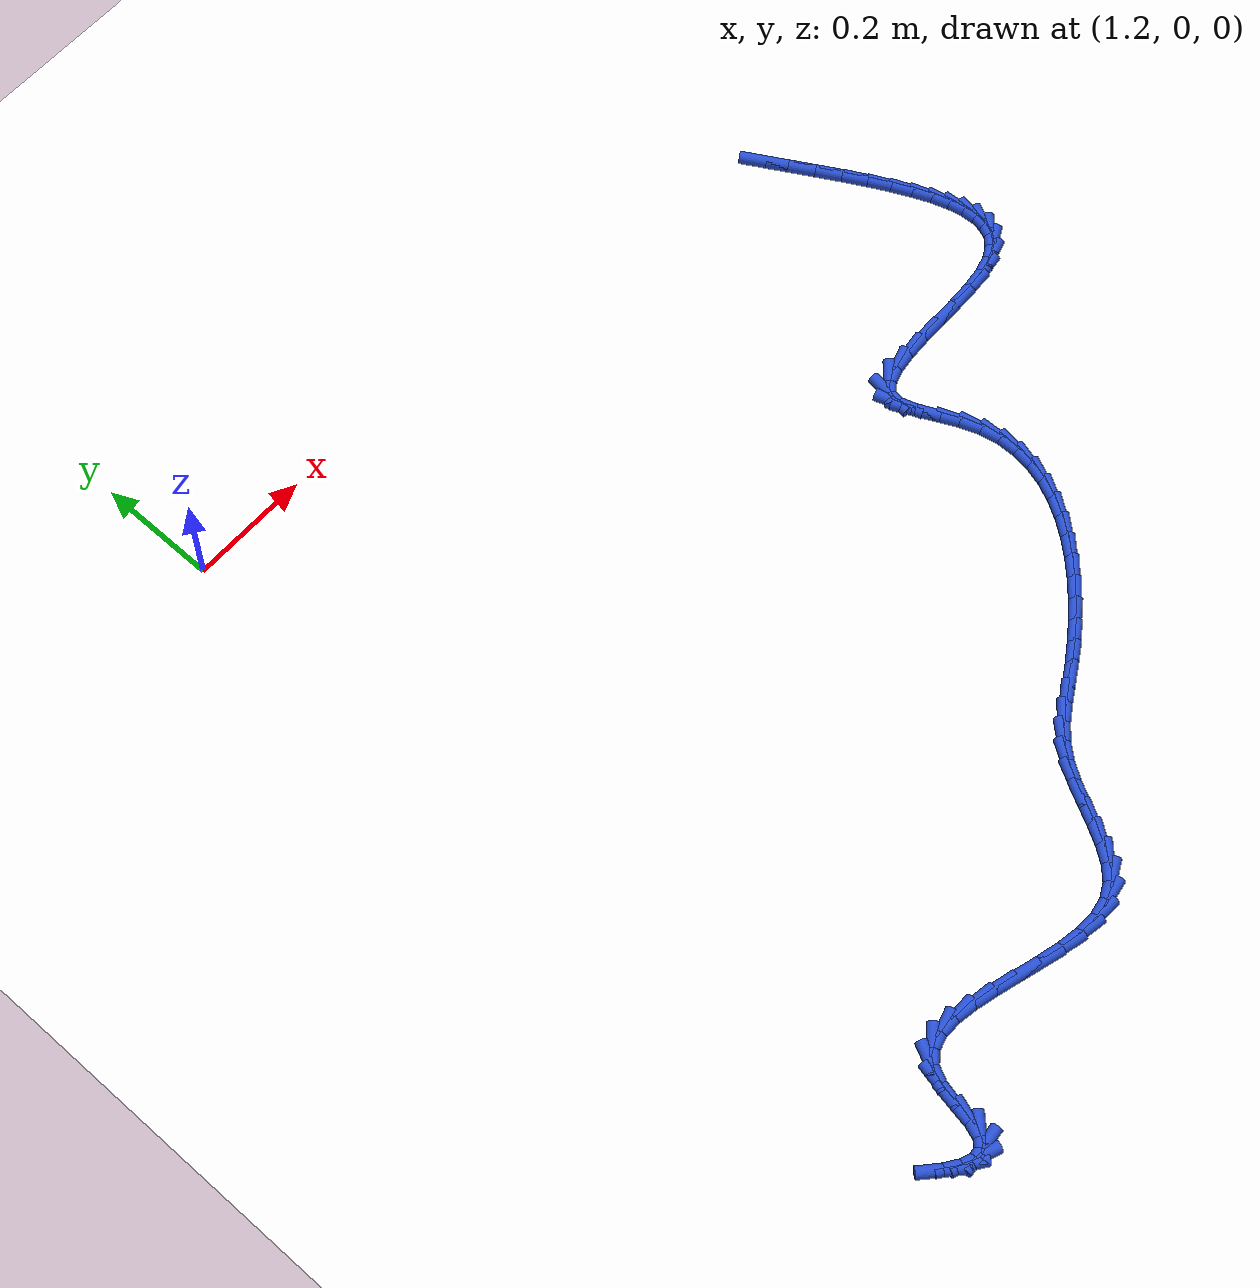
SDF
<sdf version="1.6">
 <world name="default">
  <model name="ground_plane">
   <static>1</static>
   <link name="link">
    <collision name="collision">
     <geometry><plane><normal>0 0 1</normal><size>100 100</size></plane></geometry>
     <surface><friction><ode><mu>100</mu><mu2>50</mu2></ode></friction></surface>
    </collision>
    <visual name="visual">
     <cast_shadows>0</cast_shadows>
     <geometry><plane><normal>0 0 1</normal><size>100 100</size></plane></geometry>
     <material>
      <script><uri>file://media/materials/scripts/gazebo.material</uri><name>Gazebo/WhiteGlow</name></script>
     </material>
    </visual>
   </link>
  </model>
  <model name="line">
   <link name="link_140">
    <pose>2.3233410467871987 -0.14578209558160848 0.01 0 1.57 -1.0468032617446763</pose>
    <collision name="collision">
     <geometry><cylinder><radius>0.01</radius><length>0.08</length></cylinder></geometry>
    </collision>
    <visual name="visual">
     <material>
      <script><name>Gazebo/Blue</name><uri>file://media/materials/scripts/gazebo.material</uri></script>
     </material>
     <geometry><cylinder><radius>0.01</radius><length>0.08</length></cylinder></geometry>
    </visual>
   </link>
   <link name="link_141">
    <pose>2.345565595922371 -0.18424111615747807 0.01 0 1.57 -1.0452987437808245</pose>
    <collision name="collision">
     <geometry><cylinder><radius>0.01</radius><length>0.08</length></cylinder></geometry>
    </collision>
    <visual name="visual">
     <material>
      <script><name>Gazebo/Blue</name><uri>file://media/materials/scripts/gazebo.material</uri></script>
     </material>
     <geometry><cylinder><radius>0.01</radius><length>0.08</length></cylinder></geometry>
    </visual>
   </link>
   <link name="link_142">
    <pose>2.3673808028524976 -0.221861014378513 0.01 0 1.57 -1.0511559035060623</pose>
    <collision name="collision">
     <geometry><cylinder><radius>0.01</radius><length>0.08</length></cylinder></geometry>
    </collision>
    <visual name="visual">
     <material>
      <script><name>Gazebo/Blue</name><uri>file://media/materials/scripts/gazebo.material</uri></script>
     </material>
     <geometry><cylinder><radius>0.01</radius><length>0.08</length></cylinder></geometry>
    </visual>
   </link>
   <link name="link_143">
    <pose>2.388302366026942 -0.2584317730133299 0.01 0 1.57 -1.0652992945127893</pose>
    <collision name="collision">
     <geometry><cylinder><radius>0.01</radius><length>0.08</length></cylinder></geometry>
    </collision>
    <visual name="visual">
     <material>
      <script><name>Gazebo/Blue</name><uri>file://media/materials/scripts/gazebo.material</uri></script>
     </material>
     <geometry><cylinder><radius>0.01</radius><length>0.08</length></cylinder></geometry>
    </visual>
   </link>
   <link name="link_144">
    <pose>2.407845983895069 -0.29374337483054624 0.01 0 1.57 -1.089341282552159</pose>
    <collision name="collision">
     <geometry><cylinder><radius>0.01</radius><length>0.08</length></cylinder></geometry>
    </collision>
    <visual name="visual">
     <material>
      <script><name>Gazebo/Blue</name><uri>file://media/materials/scripts/gazebo.material</uri></script>
     </material>
     <geometry><cylinder><radius>0.01</radius><length>0.08</length></cylinder></geometry>
    </visual>
   </link>
   <link name="link_145">
    <pose>2.4255273549062433 -0.32758580259877856 0.01 0 1.57 -1.1258957930219091</pose>
    <collision name="collision">
     <geometry><cylinder><radius>0.01</radius><length>0.08</length></cylinder></geometry>
    </collision>
    <visual name="visual">
     <material>
      <script><name>Gazebo/Blue</name><uri>file://media/materials/scripts/gazebo.material</uri></script>
     </material>
     <geometry><cylinder><radius>0.01</radius><length>0.08</length></cylinder></geometry>
    </visual>
   </link>
   <link name="link_146">
    <pose>2.440862177509827 -0.3597490390866439 0.01 0 1.57 -1.1791109807450115</pose>
    <collision name="collision">
     <geometry><cylinder><radius>0.01</radius><length>0.08</length></cylinder></geometry>
    </collision>
    <visual name="visual">
     <material>
      <script><name>Gazebo/Blue</name><uri>file://media/materials/scripts/gazebo.material</uri></script>
     </material>
     <geometry><cylinder><radius>0.01</radius><length>0.08</length></cylinder></geometry>
    </visual>
   </link>
   <link name="link_147">
    <pose>2.4533661501551856 -0.3900230670627593 0.01 0 1.57 -1.2555371748686328</pose>
    <collision name="collision">
     <geometry><cylinder><radius>0.01</radius><length>0.08</length></cylinder></geometry>
    </collision>
    <visual name="visual">
     <material>
      <script><name>Gazebo/Blue</name><uri>file://media/materials/scripts/gazebo.material</uri></script>
     </material>
     <geometry><cylinder><radius>0.01</radius><length>0.08</length></cylinder></geometry>
    </visual>
   </link>
   <link name="link_148">
    <pose>2.4625549712916825 -0.4181978692957416 0.01 0 1.57 -1.3653746337257533</pose>
    <collision name="collision">
     <geometry><cylinder><radius>0.01</radius><length>0.08</length></cylinder></geometry>
    </collision>
    <visual name="visual">
     <material>
      <script><name>Gazebo/Blue</name><uri>file://media/materials/scripts/gazebo.material</uri></script>
     </material>
     <geometry><cylinder><radius>0.01</radius><length>0.08</length></cylinder></geometry>
    </visual>
   </link>
   <link name="link_149">
    <pose>2.467944339368682 -0.4440634285542078 0.01 0 1.57 -1.5234745625955062</pose>
    <collision name="collision">
     <geometry><cylinder><radius>0.01</radius><length>0.08</length></cylinder></geometry>
    </collision>
    <visual name="visual">
     <material>
      <script><name>Gazebo/Blue</name><uri>file://media/materials/scripts/gazebo.material</uri></script>
     </material>
     <geometry><cylinder><radius>0.01</radius><length>0.08</length></cylinder></geometry>
    </visual>
   </link>
   <link name="link_150">
    <pose>2.4690499528355483 -0.46740972760677485 0.01 0 1.57 1.394988616758866</pose>
    <collision name="collision">
     <geometry><cylinder><radius>0.01</radius><length>0.08</length></cylinder></geometry>
    </collision>
    <visual name="visual">
     <material>
      <script><name>Gazebo/Blue</name><uri>file://media/materials/scripts/gazebo.material</uri></script>
     </material>
     <geometry><cylinder><radius>0.01</radius><length>0.08</length></cylinder></geometry>
    </visual>
   </link>
   <link name="link_151">
    <pose>2.4653875101416456 -0.48802674922205985 0.01 0 1.57 1.103718123807174</pose>
    <collision name="collision">
     <geometry><cylinder><radius>0.01</radius><length>0.08</length></cylinder></geometry>
    </collision>
    <visual name="visual">
     <material>
      <script><name>Gazebo/Blue</name><uri>file://media/materials/scripts/gazebo.material</uri></script>
     </material>
     <geometry><cylinder><radius>0.01</radius><length>0.08</length></cylinder></geometry>
    </visual>
   </link>
   <link name="link_152">
    <pose>2.456472709736338 -0.505704476168679 0.01 0 1.57 0.7811814252276408</pose>
    <collision name="collision">
     <geometry><cylinder><radius>0.01</radius><length>0.08</length></cylinder></geometry>
    </collision>
    <visual name="visual">
     <material>
      <script><name>Gazebo/Blue</name><uri>file://media/materials/scripts/gazebo.material</uri></script>
     </material>
     <geometry><cylinder><radius>0.01</radius><length>0.08</length></cylinder></geometry>
    </visual>
   </link>
   <link name="link_153">
    <pose>2.4418212500689886 -0.5202328912152504 0.01 0 1.57 0.49134119943438126</pose>
    <collision name="collision">
     <geometry><cylinder><radius>0.01</radius><length>0.08</length></cylinder></geometry>
    </collision>
    <visual name="visual">
     <material>
      <script><name>Gazebo/Blue</name><uri>file://media/materials/scripts/gazebo.material</uri></script>
     </material>
     <geometry><cylinder><radius>0.01</radius><length>0.08</length></cylinder></geometry>
    </visual>
   </link>
   <link name="link_154">
    <pose>2.420948829588962 -0.5314019771303906 0.01 0 1.57 0.2689063510715113</pose>
    <collision name="collision">
     <geometry><cylinder><radius>0.01</radius><length>0.08</length></cylinder></geometry>
    </collision>
    <visual name="visual">
     <material>
      <script><name>Gazebo/Blue</name><uri>file://media/materials/scripts/gazebo.material</uri></script>
     </material>
     <geometry><cylinder><radius>0.01</radius><length>0.08</length></cylinder></geometry>
    </visual>
   </link>
   <link name="link_155">
    <pose>2.393371336149462 -0.5390018124081634 0.01 0 1.57 0.1200762438539029</pose>
    <collision name="collision">
     <geometry><cylinder><radius>0.01</radius><length>0.08</length></cylinder></geometry>
    </collision>
    <visual name="visual">
     <material>
      <script><name>Gazebo/Blue</name><uri>file://media/materials/scripts/gazebo.material</uri></script>
     </material>
     <geometry><cylinder><radius>0.01</radius><length>0.08</length></cylinder></geometry>
    </visual>
   </link>
   <link name="link_156">
    <pose>2.359202314145568 -0.54312453351444 0.01 0 1.57 0.0441050024205693</pose>
    <collision name="collision">
     <geometry><cylinder><radius>0.01</radius><length>0.08</length></cylinder></geometry>
    </collision>
    <visual name="visual">
     <material>
      <script><name>Gazebo/Blue</name><uri>file://media/materials/scripts/gazebo.material</uri></script>
     </material>
     <geometry><cylinder><radius>0.01</radius><length>0.08</length></cylinder></geometry>
    </visual>
   </link>
   <link name="link_157">
    <pose>2.3204772079832443 -0.5448336127553774 0.01 0 1.57 0.013552054707591058</pose>
    <collision name="collision">
     <geometry><cylinder><radius>0.01</radius><length>0.08</length></cylinder></geometry>
    </collision>
    <visual name="visual">
     <material>
      <script><name>Gazebo/Blue</name><uri>file://media/materials/scripts/gazebo.material</uri></script>
     </material>
     <geometry><cylinder><radius>0.01</radius><length>0.08</length></cylinder></geometry>
    </visual>
   </link>
   <link name="link_158">
    <pose>2.279617022360586 -0.5453873861283843 0.01 0 1.57 0.016186275126134894</pose>
    <collision name="collision">
     <geometry><cylinder><radius>0.01</radius><length>0.08</length></cylinder></geometry>
    </collision>
    <visual name="visual">
     <material>
      <script><name>Gazebo/Blue</name><uri>file://media/materials/scripts/gazebo.material</uri></script>
     </material>
     <geometry><cylinder><radius>0.01</radius><length>0.08</length></cylinder></geometry>
    </visual>
   </link>
   <link name="link_159">
    <pose>2.2390427619756927 -0.5460441896308701 0.01 0 1.57 0.053245423536676634</pose>
    <collision name="collision">
     <geometry><cylinder><radius>0.01</radius><length>0.08</length></cylinder></geometry>
    </collision>
    <visual name="visual">
     <material>
      <script><name>Gazebo/Blue</name><uri>file://media/materials/scripts/gazebo.material</uri></script>
     </material>
     <geometry><cylinder><radius>0.01</radius><length>0.08</length></cylinder></geometry>
    </visual>
   </link>
   <link name="link_160">
    <pose>2.2011754315266603 -0.5480623592602436 0.01 0 1.57 0.14072392625003285</pose>
    <collision name="collision">
     <geometry><cylinder><radius>0.01</radius><length>0.08</length></cylinder></geometry>
    </collision>
    <visual name="visual">
     <material>
      <script><name>Gazebo/Blue</name><uri>file://media/materials/scripts/gazebo.material</uri></script>
     </material>
     <geometry><cylinder><radius>0.01</radius><length>0.08</length></cylinder></geometry>
    </visual>
   </link>
   <link name="link_161">
    <pose>2.168436035711585 -0.5527002310139141 0.01 0 1.57 0.32599936582326794</pose>
    <collision name="collision">
     <geometry><cylinder><radius>0.01</radius><length>0.08</length></cylinder></geometry>
    </collision>
    <visual name="visual">
     <material>
      <script><name>Gazebo/Blue</name><uri>file://media/materials/scripts/gazebo.material</uri></script>
     </material>
     <geometry><cylinder><radius>0.01</radius><length>0.08</length></cylinder></geometry>
    </visual>
   </link>
   <link name="link_162">
    <pose>2.143245579228565 -0.5612161408892905 0.01 0 1.57 0.7311363939620734</pose>
    <collision name="collision">
     <geometry><cylinder><radius>0.01</radius><length>0.08</length></cylinder></geometry>
    </collision>
    <visual name="visual">
     <material>
      <script><name>Gazebo/Blue</name><uri>file://media/materials/scripts/gazebo.material</uri></script>
     </material>
     <geometry><cylinder><radius>0.01</radius><length>0.08</length></cylinder></geometry>
    </visual>
   </link>
   <link name="link_163">
    <pose>2.128025066775697 -0.5748684248837818 0.01 0 1.57 1.425316720956069</pose>
    <collision name="collision">
     <geometry><cylinder><radius>0.01</radius><length>0.08</length></cylinder></geometry>
    </collision>
    <visual name="visual">
     <material>
      <script><name>Gazebo/Blue</name><uri>file://media/materials/scripts/gazebo.material</uri></script>
     </material>
     <geometry><cylinder><radius>0.01</radius><length>0.08</length></cylinder></geometry>
    </visual>
   </link>
   <link name="link_164">
    <pose>2.1250941328137456 -0.5948727934773562 0.01 0 1.57 -1.260852409515413</pose>
    <collision name="collision">
     <geometry><cylinder><radius>0.01</radius><length>0.08</length></cylinder></geometry>
    </collision>
    <visual name="visual">
     <material>
      <script><name>Gazebo/Blue</name><uri>file://media/materials/scripts/gazebo.material</uri></script>
     </material>
     <geometry><cylinder><radius>0.01</radius><length>0.08</length></cylinder></geometry>
    </visual>
   </link>
   <link name="link_165">
    <pose>2.133481343366083 -0.6210610845383595 0.01 0 1.57 -1.1196491198983989</pose>
    <collision name="collision">
     <geometry><cylinder><radius>0.01</radius><length>0.08</length></cylinder></geometry>
    </collision>
    <visual name="visual">
     <material>
      <script><name>Gazebo/Blue</name><uri>file://media/materials/scripts/gazebo.material</uri></script>
     </material>
     <geometry><cylinder><radius>0.01</radius><length>0.08</length></cylinder></geometry>
    </visual>
   </link>
   <link name="link_166">
    <pose>2.148281990439468 -0.651611220105326 0.01 0 1.57 -1.1173375479734229</pose>
    <collision name="collision">
     <geometry><cylinder><radius>0.01</radius><length>0.08</length></cylinder></geometry>
    </collision>
    <visual name="visual">
     <material>
      <script><name>Gazebo/Blue</name><uri>file://media/materials/scripts/gazebo.material</uri></script>
     </material>
     <geometry><cylinder><radius>0.01</radius><length>0.08</length></cylinder></geometry>
    </visual>
   </link>
   <link name="link_167">
    <pose>2.164360273898908 -0.6846039494925459 0.01 0 1.57 -1.2187310093450725</pose>
    <collision name="collision">
     <geometry><cylinder><radius>0.01</radius><length>0.08</length></cylinder></geometry>
    </collision>
    <visual name="visual">
     <material>
      <script><name>Gazebo/Blue</name><uri>file://media/materials/scripts/gazebo.material</uri></script>
     </material>
     <geometry><cylinder><radius>0.01</radius><length>0.08</length></cylinder></geometry>
    </visual>
   </link>
   <link name="link_168">
    <pose>2.1766855645198375 -0.7181539524183509 0.01 0 1.57 -1.3860027447230714</pose>
    <collision name="collision">
     <geometry><cylinder><radius>0.01</radius><length>0.08</length></cylinder></geometry>
    </collision>
    <visual name="visual">
     <material>
      <script><name>Gazebo/Blue</name><uri>file://media/materials/scripts/gazebo.material</uri></script>
     </material>
     <geometry><cylinder><radius>0.01</radius><length>0.08</length></cylinder></geometry>
    </visual>
   </link>
   <link name="link_169">
    <pose>2.1828679442650714 -0.7512278589852184 0.01 0 1.57 -1.5578669824943394</pose>
    <collision name="collision">
     <geometry><cylinder><radius>0.01</radius><length>0.08</length></cylinder></geometry>
    </collision>
    <visual name="visual">
     <material>
      <script><name>Gazebo/Blue</name><uri>file://media/materials/scripts/gazebo.material</uri></script>
     </material>
     <geometry><cylinder><radius>0.01</radius><length>0.08</length></cylinder></geometry>
    </visual>
   </link>
   <link name="link_170">
    <pose>2.183287630191659 -0.7836860046235551 0.01 0 1.57 1.4197515952730801</pose>
    <collision name="collision">
     <geometry><cylinder><radius>0.01</radius><length>0.08</length></cylinder></geometry>
    </collision>
    <visual name="visual">
     <material>
      <script><name>Gazebo/Blue</name><uri>file://media/materials/scripts/gazebo.material</uri></script>
     </material>
     <geometry><cylinder><radius>0.01</radius><length>0.08</length></cylinder></geometry>
    </visual>
   </link>
   <link name="link_171">
    <pose>2.17845591362706 -0.8154310121504214 0.01 0 1.57 1.2707176164944836</pose>
    <collision name="collision">
     <geometry><cylinder><radius>0.01</radius><length>0.08</length></cylinder></geometry>
    </collision>
    <visual name="visual">
     <material>
      <script><name>Gazebo/Blue</name><uri>file://media/materials/scripts/gazebo.material</uri></script>
     </material>
     <geometry><cylinder><radius>0.01</radius><length>0.08</length></cylinder></geometry>
    </visual>
   </link>
   <link name="link_172">
    <pose>2.1688840858987364 -0.8463655043828792 0.01 0 1.57 1.1399761662818337</pose>
    <collision name="collision">
     <geometry><cylinder><radius>0.01</radius><length>0.08</length></cylinder></geometry>
    </collision>
    <visual name="visual">
     <material>
      <script><name>Gazebo/Blue</name><uri>file://media/materials/scripts/gazebo.material</uri></script>
     </material>
     <geometry><cylinder><radius>0.01</radius><length>0.08</length></cylinder></geometry>
    </visual>
   </link>
   <link name="link_173">
    <pose>2.1550834383341493 -0.8763921041379893 0.01 0 1.57 1.0277112103521304</pose>
    <collision name="collision">
     <geometry><cylinder><radius>0.01</radius><length>0.08</length></cylinder></geometry>
    </collision>
    <visual name="visual">
     <material>
      <script><name>Gazebo/Blue</name><uri>file://media/materials/scripts/gazebo.material</uri></script>
     </material>
     <geometry><cylinder><radius>0.01</radius><length>0.08</length></cylinder></geometry>
    </visual>
   </link>
   <link name="link_174">
    <pose>2.1375652622607584 -0.9054134342328136 0.01 0 1.57 0.9322328065528858</pose>
    <collision name="collision">
     <geometry><cylinder><radius>0.01</radius><length>0.08</length></cylinder></geometry>
    </collision>
    <visual name="visual">
     <material>
      <script><name>Gazebo/Blue</name><uri>file://media/materials/scripts/gazebo.material</uri></script>
     </material>
     <geometry><cylinder><radius>0.01</radius><length>0.08</length></cylinder></geometry>
    </visual>
   </link>
   <link name="link_175">
    <pose>2.1168408490060253 -0.9333321174844134 0.01 0 1.57 0.8511077852836807</pose>
    <collision name="collision">
     <geometry><cylinder><radius>0.01</radius><length>0.08</length></cylinder></geometry>
    </collision>
    <visual name="visual">
     <material>
      <script><name>Gazebo/Blue</name><uri>file://media/materials/scripts/gazebo.material</uri></script>
     </material>
     <geometry><cylinder><radius>0.01</radius><length>0.08</length></cylinder></geometry>
    </visual>
   </link>
   <link name="link_176">
    <pose>2.0934214898974113 -0.9600507767098502 0.01 0 1.57 0.7818360380781065</pose>
    <collision name="collision">
     <geometry><cylinder><radius>0.01</radius><length>0.08</length></cylinder></geometry>
    </collision>
    <visual name="visual">
     <material>
      <script><name>Gazebo/Blue</name><uri>file://media/materials/scripts/gazebo.material</uri></script>
     </material>
     <geometry><cylinder><radius>0.01</radius><length>0.08</length></cylinder></geometry>
    </visual>
   </link>
   <link name="link_177">
    <pose>2.0678184762623757 -0.985472034726185 0.01 0 1.57 0.7221535841826715</pose>
    <collision name="collision">
     <geometry><cylinder><radius>0.01</radius><length>0.08</length></cylinder></geometry>
    </collision>
    <visual name="visual">
     <material>
      <script><name>Gazebo/Blue</name><uri>file://media/materials/scripts/gazebo.material</uri></script>
     </material>
     <geometry><cylinder><radius>0.01</radius><length>0.08</length></cylinder></geometry>
    </visual>
   </link>
   <link name="link_178">
    <pose>2.040543099428382 -1.00949851435048 0.01 0 1.57 0.6701172806839398</pose>
    <collision name="collision">
     <geometry><cylinder><radius>0.01</radius><length>0.08</length></cylinder></geometry>
    </collision>
    <visual name="visual">
     <material>
      <script><name>Gazebo/Blue</name><uri>file://media/materials/scripts/gazebo.material</uri></script>
     </material>
     <geometry><cylinder><radius>0.01</radius><length>0.08</length></cylinder></geometry>
    </visual>
   </link>
   <link name="link_179">
    <pose>2.0121066507228886 -1.032032838399796 0.01 0 1.57 0.6240843264084551</pose>
    <collision name="collision">
     <geometry><cylinder><radius>0.01</radius><length>0.08</length></cylinder></geometry>
    </collision>
    <visual name="visual">
     <material>
      <script><name>Gazebo/Blue</name><uri>file://media/materials/scripts/gazebo.material</uri></script>
     </material>
     <geometry><cylinder><radius>0.01</radius><length>0.08</length></cylinder></geometry>
    </visual>
   </link>
   <link name="link_180">
    <pose>1.9830204214733578 -1.0529776296911948 0.01 0 1.57 0.5826472912507287</pose>
    <collision name="collision">
     <geometry><cylinder><radius>0.01</radius><length>0.08</length></cylinder></geometry>
    </collision>
    <visual name="visual">
     <material>
      <script><name>Gazebo/Blue</name><uri>file://media/materials/scripts/gazebo.material</uri></script>
     </material>
     <geometry><cylinder><radius>0.01</radius><length>0.08</length></cylinder></geometry>
    </visual>
   </link>
   <link name="link_181">
    <pose>1.9537957030072506 -1.0722355110417379 0.01 0 1.57 0.5461466248929208</pose>
    <collision name="collision">
     <geometry><cylinder><radius>0.01</radius><length>0.08</length></cylinder></geometry>
    </collision>
    <visual name="visual">
     <material>
      <script><name>Gazebo/Blue</name><uri>file://media/materials/scripts/gazebo.material</uri></script>
     </material>
     <geometry><cylinder><radius>0.01</radius><length>0.08</length></cylinder></geometry>
    </visual>
   </link>
   <link name="link_182">
    <pose>1.9249488010162699 -1.0897691147842836 0.01 0 1.57 0.5396797505108822</pose>
    <collision name="collision">
     <geometry><cylinder><radius>0.01</radius><length>0.08</length></cylinder></geometry>
    </collision>
    <visual name="visual">
     <material>
      <script><name>Gazebo/Blue</name><uri>file://media/materials/scripts/gazebo.material</uri></script>
     </material>
     <geometry><cylinder><radius>0.01</radius><length>0.08</length></cylinder></geometry>
    </visual>
   </link>
   <link name="link_183">
    <pose>1.8970733377437028 -1.106466360805214 0.01 0 1.57 0.5873578351131152</pose>
    <collision name="collision">
     <geometry><cylinder><radius>0.01</radius><length>0.08</length></cylinder></geometry>
    </collision>
    <visual name="visual">
     <material>
      <script><name>Gazebo/Blue</name><uri>file://media/materials/scripts/gazebo.material</uri></script>
     </material>
     <geometry><cylinder><radius>0.01</radius><length>0.08</length></cylinder></geometry>
    </visual>
   </link>
   <link name="link_184">
    <pose>1.8708236455696226 -1.1239417189054308 0.01 0 1.57 0.6926212762199931</pose>
    <collision name="collision">
     <geometry><cylinder><radius>0.01</radius><length>0.08</length></cylinder></geometry>
    </collision>
    <visual name="visual">
     <material>
      <script><name>Gazebo/Blue</name><uri>file://media/materials/scripts/gazebo.material</uri></script>
     </material>
     <geometry><cylinder><radius>0.01</radius><length>0.08</length></cylinder></geometry>
    </visual>
   </link>
   <link name="link_185">
    <pose>1.8468556889649386 -1.1438291909692997 0.01 0 1.57 0.8481174244822144</pose>
    <collision name="collision">
     <geometry><cylinder><radius>0.01</radius><length>0.08</length></cylinder></geometry>
    </collision>
    <visual name="visual">
     <material>
      <script><name>Gazebo/Blue</name><uri>file://media/materials/scripts/gazebo.material</uri></script>
     </material>
     <geometry><cylinder><radius>0.01</radius><length>0.08</length></cylinder></geometry>
    </visual>
   </link>
   <link name="link_186">
    <pose>1.8257980022825329 -1.1677090273672452 0.01 0 1.57 0.9894305406614538</pose>
    <collision name="collision">
     <geometry><cylinder><radius>0.01</radius><length>0.08</length></cylinder></geometry>
    </collision>
    <visual name="visual">
     <material>
      <script><name>Gazebo/Blue</name><uri>file://media/materials/scripts/gazebo.material</uri></script>
     </material>
     <geometry><cylinder><radius>0.01</radius><length>0.08</length></cylinder></geometry>
    </visual>
   </link>
   <link name="link_187">
    <pose>1.807477007977065 -1.1955896759410765 0.01 0 1.57 1.0651395412183657</pose>
    <collision name="collision">
     <geometry><cylinder><radius>0.01</radius><length>0.08</length></cylinder></geometry>
    </collision>
    <visual name="visual">
     <material>
      <script><name>Gazebo/Blue</name><uri>file://media/materials/scripts/gazebo.material</uri></script>
     </material>
     <geometry><cylinder><radius>0.01</radius><length>0.08</length></cylinder></geometry>
    </visual>
   </link>
   <link name="link_188">
    <pose>1.790808503499013 -1.2256951418789497 0.01 0 1.57 1.0832627313668723</pose>
    <collision name="collision">
     <geometry><cylinder><radius>0.01</radius><length>0.08</length></cylinder></geometry>
    </collision>
    <visual name="visual">
     <material>
      <script><name>Gazebo/Blue</name><uri>file://media/materials/scripts/gazebo.material</uri></script>
     </material>
     <geometry><cylinder><radius>0.01</radius><length>0.08</length></cylinder></geometry>
    </visual>
   </link>
   <link name="link_189">
    <pose>1.7746590439722334 -1.2561529360847827 0.01 0 1.57 1.0457290246721553</pose>
    <collision name="collision">
     <geometry><cylinder><radius>0.01</radius><length>0.08</length></cylinder></geometry>
    </collision>
    <visual name="visual">
     <material>
      <script><name>Gazebo/Blue</name><uri>file://media/materials/scripts/gazebo.material</uri></script>
     </material>
     <geometry><cylinder><radius>0.01</radius><length>0.08</length></cylinder></geometry>
    </visual>
   </link>
   <link name="link_190">
    <pose>1.7578951845205857 -1.285090569462495 0.01 0 1.57 0.9437039318214809</pose>
    <collision name="collision">
     <geometry><cylinder><radius>0.01</radius><length>0.08</length></cylinder></geometry>
    </collision>
    <visual name="visual">
     <material>
      <script><name>Gazebo/Blue</name><uri>file://media/materials/scripts/gazebo.material</uri></script>
     </material>
     <geometry><cylinder><radius>0.01</radius><length>0.08</length></cylinder></geometry>
    </visual>
   </link>
   <link name="link_191">
    <pose>1.7393834802679242 -1.3106355529160032 0.01 0 1.57 0.7586928823232378</pose>
    <collision name="collision">
     <geometry><cylinder><radius>0.01</radius><length>0.08</length></cylinder></geometry>
    </collision>
    <visual name="visual">
     <material>
      <script><name>Gazebo/Blue</name><uri>file://media/materials/scripts/gazebo.material</uri></script>
     </material>
     <geometry><cylinder><radius>0.01</radius><length>0.08</length></cylinder></geometry>
    </visual>
   </link>
   <link name="link_192">
    <pose>1.7179904863381084 -1.330915397349227 0.01 0 1.57 0.47753415795861487</pose>
    <collision name="collision">
     <geometry><cylinder><radius>0.01</radius><length>0.08</length></cylinder></geometry>
    </collision>
    <visual name="visual">
     <material>
      <script><name>Gazebo/Blue</name><uri>file://media/materials/scripts/gazebo.material</uri></script>
     </material>
     <geometry><cylinder><radius>0.01</radius><length>0.08</length></cylinder></geometry>
    </visual>
   </link>
   <link name="link_193">
    <pose>1.6925854427794844 -1.3440620166423114 0.01 0 1.57 0.17015797890187867</pose>
    <collision name="collision">
     <geometry><cylinder><radius>0.01</radius><length>0.08</length></cylinder></geometry>
    </collision>
    <visual name="visual">
     <material>
      <script><name>Gazebo/Blue</name><uri>file://media/materials/scripts/gazebo.material</uri></script>
     </material>
     <geometry><cylinder><radius>0.01</radius><length>0.08</length></cylinder></geometry>
    </visual>
   </link>
   <link name="link_194">
    <pose>1.662646632469194 -1.349206086877848 0.01 0 1.57 -0.043597118008268015</pose>
    <collision name="collision">
     <geometry><cylinder><radius>0.01</radius><length>0.08</length></cylinder></geometry>
    </collision>
    <visual name="visual">
     <material>
      <script><name>Gazebo/Blue</name><uri>file://media/materials/scripts/gazebo.material</uri></script>
     </material>
     <geometry><cylinder><radius>0.01</radius><length>0.08</length></cylinder></geometry>
    </visual>
   </link>
   <link name="link_195">
    <pose>1.6290312992054696 -1.3477396260039305 0.01 0 1.57 -0.17407464009659912</pose>
    <collision name="collision">
     <geometry><cylinder><radius>0.01</radius><length>0.08</length></cylinder></geometry>
    </collision>
    <visual name="visual">
     <material>
      <script><name>Gazebo/Blue</name><uri>file://media/materials/scripts/gazebo.material</uri></script>
     </material>
     <geometry><cylinder><radius>0.01</radius><length>0.08</length></cylinder></geometry>
    </visual>
   </link>
   <link name="link_196">
    <pose>1.5927864255938893 -1.3413658024167878 0.01 0 1.57 -0.24799094229025825</pose>
    <collision name="collision">
     <geometry><cylinder><radius>0.01</radius><length>0.08</length></cylinder></geometry>
    </collision>
    <visual name="visual">
     <material>
      <script><name>Gazebo/Blue</name><uri>file://media/materials/scripts/gazebo.material</uri></script>
     </material>
     <geometry><cylinder><radius>0.01</radius><length>0.08</length></cylinder></geometry>
    </visual>
   </link>
   <link name="link_197">
    <pose>1.5549589942400321 -1.3317877845126498 0.01 0 1.57 -0.28114552769082096</pose>
    <collision name="collision">
     <geometry><cylinder><radius>0.01</radius><length>0.08</length></cylinder></geometry>
    </collision>
    <visual name="visual">
     <material>
      <script><name>Gazebo/Blue</name><uri>file://media/materials/scripts/gazebo.material</uri></script>
     </material>
     <geometry><cylinder><radius>0.01</radius><length>0.08</length></cylinder></geometry>
    </visual>
   </link>
   <link name="link_198">
    <pose>1.5165959877494746 -1.3207087406877454 0.01 0 1.57 -0.27981723246658374</pose>
    <collision name="collision">
     <geometry><cylinder><radius>0.01</radius><length>0.08</length></cylinder></geometry>
    </collision>
    <visual name="visual">
     <material>
      <script><name>Gazebo/Blue</name><uri>file://media/materials/scripts/gazebo.material</uri></script>
     </material>
     <geometry><cylinder><radius>0.01</radius><length>0.08</length></cylinder></geometry>
    </visual>
   </link>
   <link name="link_199">
    <pose>1.4787443887277958 -1.3098318393383037 0.01 0 1.57 -0.24233928068966865</pose>
    <collision name="collision">
     <geometry><cylinder><radius>0.01</radius><length>0.08</length></cylinder></geometry>
    </collision>
    <visual name="visual">
     <material>
      <script><name>Gazebo/Blue</name><uri>file://media/materials/scripts/gazebo.material</uri></script>
     </material>
     <geometry><cylinder><radius>0.01</radius><length>0.08</length></cylinder></geometry>
    </visual>
   </link>
   <link name="link_200">
    <pose>1.442451179780573 -1.3008602488605543 0.01 0 1.57 -0.1578753560066524</pose>
    <collision name="collision">
     <geometry><cylinder><radius>0.01</radius><length>0.08</length></cylinder></geometry>
    </collision>
    <visual name="visual">
     <material>
      <script><name>Gazebo/Blue</name><uri>file://media/materials/scripts/gazebo.material</uri></script>
     </material>
     <geometry><cylinder><radius>0.01</radius><length>0.08</length></cylinder></geometry>
    </visual>
   </link>
   <link name="link_201">
    <pose>1.408763343513385 -1.295497137650726 0.01 0 1.57 -0.001713423379064909</pose>
    <collision name="collision">
     <geometry><cylinder><radius>0.01</radius><length>0.08</length></cylinder></geometry>
    </collision>
    <visual name="visual">
     <material>
      <script><name>Gazebo/Blue</name><uri>file://media/materials/scripts/gazebo.material</uri></script>
     </material>
     <geometry><cylinder><radius>0.01</radius><length>0.08</length></cylinder></geometry>
    </visual>
   </link>
   <link name="link_202">
    <pose>1.3787278625318087 -1.2954456741050482 0.01 0 1.57 0.26821624116640025</pose>
    <collision name="collision">
     <geometry><cylinder><radius>0.01</radius><length>0.08</length></cylinder></geometry>
    </collision>
    <visual name="visual">
     <material>
      <script><name>Gazebo/Blue</name><uri>file://media/materials/scripts/gazebo.material</uri></script>
     </material>
     <geometry><cylinder><radius>0.01</radius><length>0.08</length></cylinder></geometry>
    </visual>
   </link>
   <link name="link_203">
    <pose>1.3533917194414216 -1.3024090266197499 0.01 0 1.57 0.6750359143084362</pose>
    <collision name="collision">
     <geometry><cylinder><radius>0.01</radius><length>0.08</length></cylinder></geometry>
    </collision>
    <visual name="visual">
     <material>
      <script><name>Gazebo/Blue</name><uri>file://media/materials/scripts/gazebo.material</uri></script>
     </material>
     <geometry><cylinder><radius>0.01</radius><length>0.08</length></cylinder></geometry>
    </visual>
   </link>
   <link name="link_204">
    <pose>1.333801896847803 -1.3180903635910608 0.01 0 1.57 1.1079923184075897</pose>
    <collision name="collision">
     <geometry><cylinder><radius>0.01</radius><length>0.08</length></cylinder></geometry>
    </collision>
    <visual name="visual">
     <material>
      <script><name>Gazebo/Blue</name><uri>file://media/materials/scripts/gazebo.material</uri></script>
     </material>
     <geometry><cylinder><radius>0.01</radius><length>0.08</length></cylinder></geometry>
    </visual>
   </link>
   <link name="link_205">
    <pose>1.3208905980498888 -1.3439675131378834 0.01 0 1.57 1.3406551955709627</pose>
    <collision name="collision">
     <geometry><cylinder><radius>0.01</radius><length>0.08</length></cylinder></geometry>
    </collision>
    <visual name="visual">
     <material>
      <script><name>Gazebo/Blue</name><uri>file://media/materials/scripts/gazebo.material</uri></script>
     </material>
     <geometry><cylinder><radius>0.01</radius><length>0.08</length></cylinder></geometry>
    </visual>
   </link>
   <link name="link_206">
    <pose>1.3131945814265966 -1.3768154502395373 0.01 0 1.57 1.3799187044620989</pose>
    <collision name="collision">
     <geometry><cylinder><radius>0.01</radius><length>0.08</length></cylinder></geometry>
    </collision>
    <visual name="visual">
     <material>
      <script><name>Gazebo/Blue</name><uri>file://media/materials/scripts/gazebo.material</uri></script>
     </material>
     <geometry><cylinder><radius>0.01</radius><length>0.08</length></cylinder></geometry>
    </visual>
   </link>
   <link name="link_207">
    <pose>1.306983589947549 -1.4089584357528921 0.01 0 1.57 1.2293565707346248</pose>
    <collision name="collision">
     <geometry><cylinder><radius>0.01</radius><length>0.08</length></cylinder></geometry>
    </collision>
    <visual name="visual">
     <material>
      <script><name>Gazebo/Blue</name><uri>file://media/materials/scripts/gazebo.material</uri></script>
     </material>
     <geometry><cylinder><radius>0.01</radius><length>0.08</length></cylinder></geometry>
    </visual>
   </link>
   <link name="link_208">
    <pose>1.2985303478473453 -1.4327464219829702 0.01 0 1.57 0.7781391775501668</pose>
    <collision name="collision">
     <geometry><cylinder><radius>0.01</radius><length>0.08</length></cylinder></geometry>
    </collision>
    <visual name="visual">
     <material>
      <script><name>Gazebo/Blue</name><uri>file://media/materials/scripts/gazebo.material</uri></script>
     </material>
     <geometry><cylinder><radius>0.01</radius><length>0.08</length></cylinder></geometry>
    </visual>
   </link>
   <link name="link_209">
    <pose>1.2861402052260802 -1.4449579780846298 0.01 0 1.57 0.10823487677138846</pose>
    <collision name="collision">
     <geometry><cylinder><radius>0.01</radius><length>0.08</length></cylinder></geometry>
    </collision>
    <visual name="visual">
     <material>
      <script><name>Gazebo/Blue</name><uri>file://media/materials/scripts/gazebo.material</uri></script>
     </material>
     <geometry><cylinder><radius>0.01</radius><length>0.08</length></cylinder></geometry>
    </visual>
   </link>
   <link name="link_210">
    <pose>1.2701052577984682 -1.4467003277155652 0.01 0 1.57 -0.3678124766446562</pose>
    <collision name="collision">
     <geometry><cylinder><radius>0.01</radius><length>0.08</length></cylinder></geometry>
    </collision>
    <visual name="visual">
     <material>
      <script><name>Gazebo/Blue</name><uri>file://media/materials/scripts/gazebo.material</uri></script>
     </material>
     <geometry><cylinder><radius>0.01</radius><length>0.08</length></cylinder></geometry>
    </visual>
   </link>
   <link name="link_211">
    <pose>1.2508004739463388 -1.4392612547124028 0.01 0 1.57 -0.6044391206135679</pose>
    <collision name="collision">
     <geometry><cylinder><radius>0.01</radius><length>0.08</length></cylinder></geometry>
    </collision>
    <visual name="visual">
     <material>
      <script><name>Gazebo/Blue</name><uri>file://media/materials/scripts/gazebo.material</uri></script>
     </material>
     <geometry><cylinder><radius>0.01</radius><length>0.08</length></cylinder></geometry>
    </visual>
   </link>
   <link name="link_212">
    <pose>1.2286008220515228 -1.423928542911769 0.01 0 1.57 -0.7258651457626494</pose>
    <collision name="collision">
     <geometry><cylinder><radius>0.01</radius><length>0.08</length></cylinder></geometry>
    </collision>
    <visual name="visual">
     <material>
      <script><name>Gazebo/Blue</name><uri>file://media/materials/scripts/gazebo.material</uri></script>
     </material>
     <geometry><cylinder><radius>0.01</radius><length>0.08</length></cylinder></geometry>
    </visual>
   </link>
  </model>
 </world>
</sdf>
